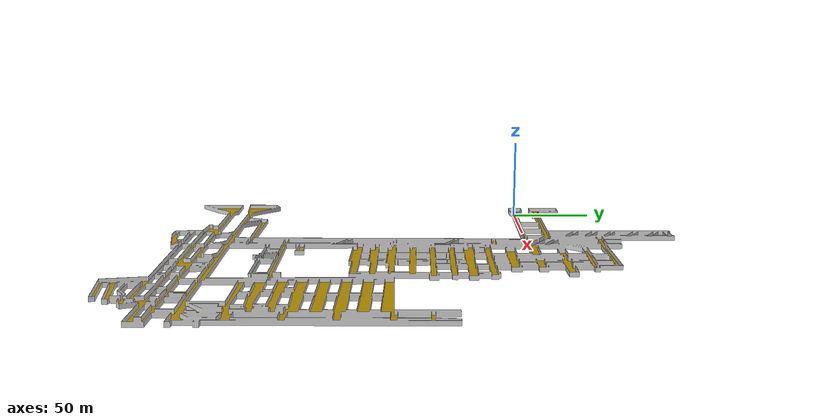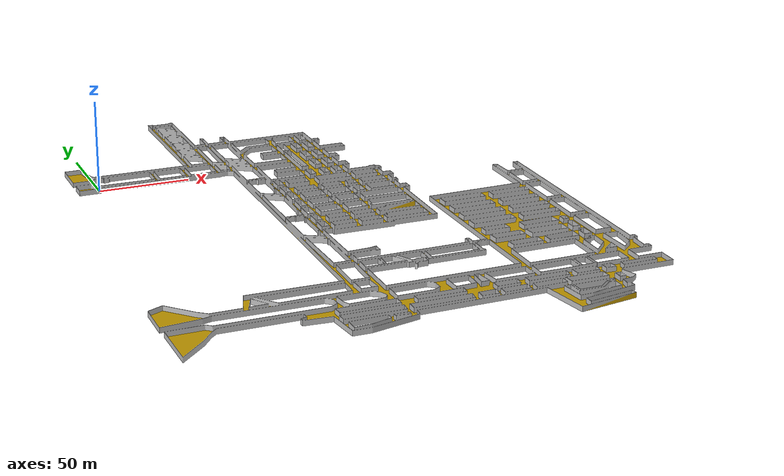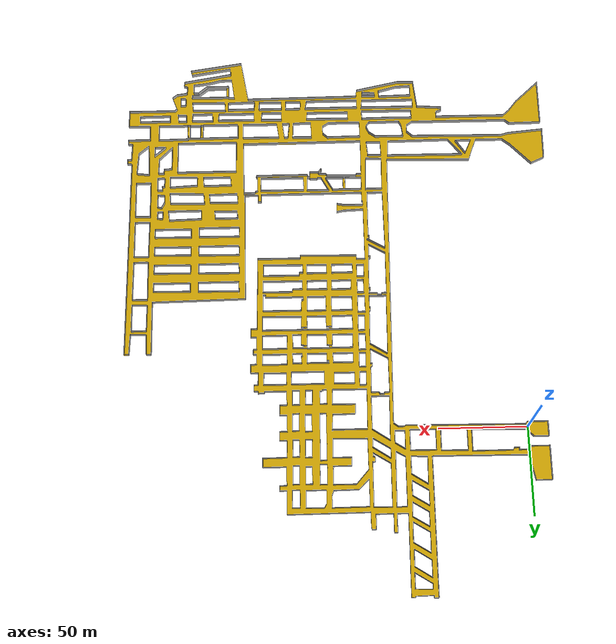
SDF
<?xml version="1.0"?>
<sdf version="1.6">
 <model name="tunnel">
   <pose>-22.0 92.5 0 0 0 0</pose>
   <static>true</static>
   <link name="link">
     <collision name="collision">
       <geometry>
         <mesh>
           <uri>model://tunnel/meshes/tunnel.dae</uri>
         </mesh>
       </geometry>
     </collision>
     <visual name="visual">
       <geometry>
         <mesh>
           <uri>model://tunnel/meshes/tunnel.dae</uri>
         </mesh>
       </geometry>
     </visual>
   </link>
 </model>
</sdf>
